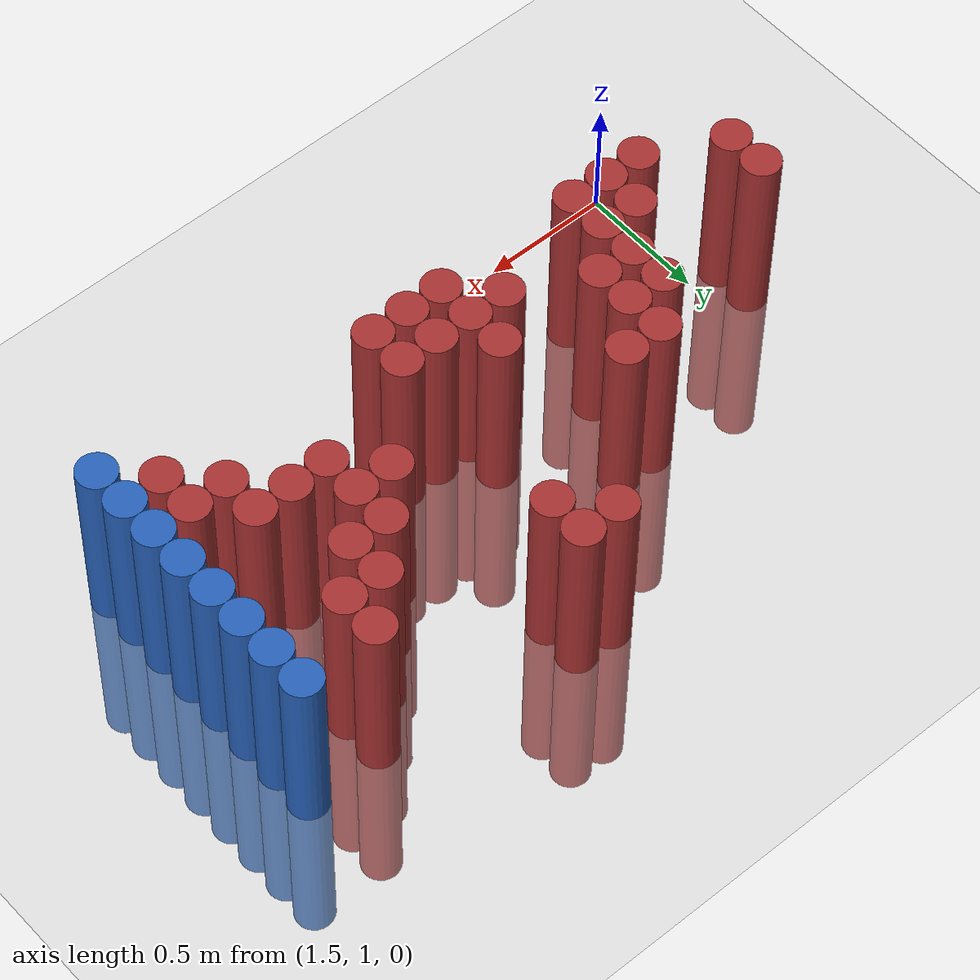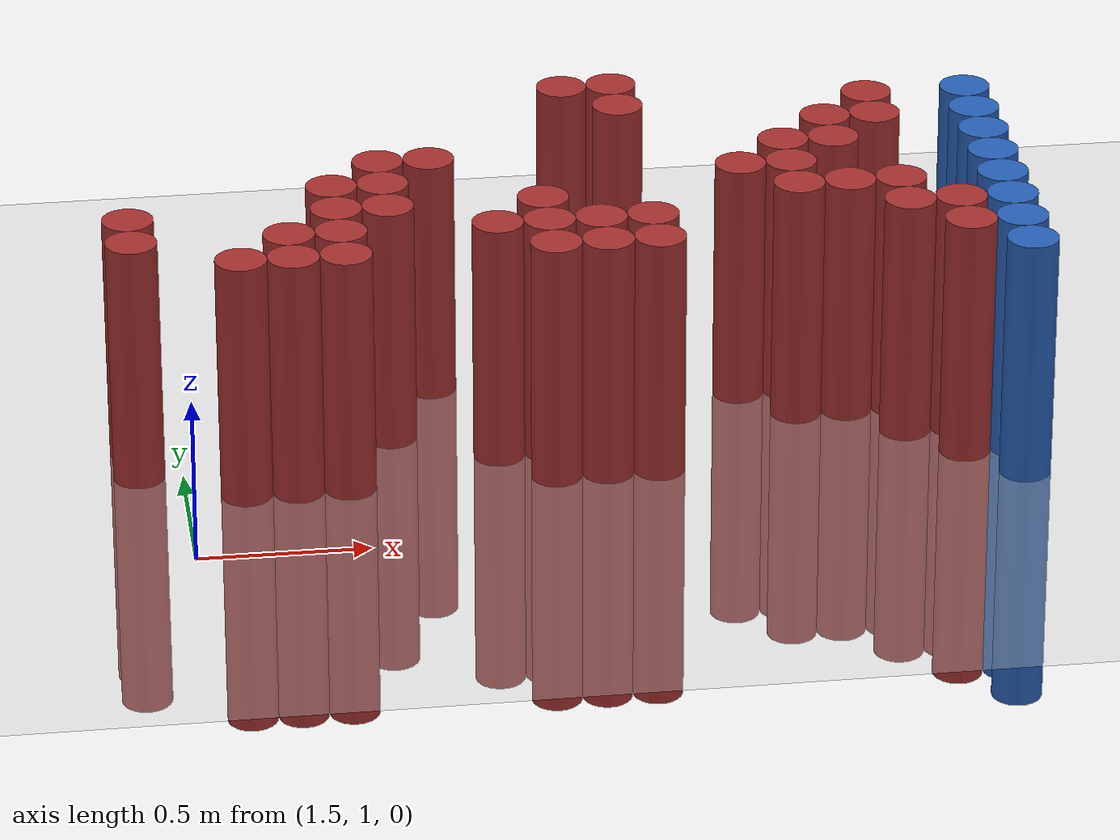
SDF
<sdf version="1.6">
 <world name="default">
  <model name="ground_plane">
   <static>1</static>
   <link name="link">
    <collision name="collision">
     <geometry><plane><normal>0 0 1</normal><size>100 100</size></plane></geometry>
     <surface><friction><ode><mu>100</mu><mu2>50</mu2></ode></friction></surface>
    </collision>
    <visual name="visual">
     <cast_shadows>0</cast_shadows>
     <geometry><plane><normal>0 0 1</normal><size>100 100</size></plane></geometry>
     <material>
      <script><uri>file://media/materials/scripts/gazebo.material</uri><name>Gazebo/Grey</name></script>
     </material>
    </visual>
   </link>
  </model>
  <model name="unit_cylinder_132">
   <static>1</static>
   <pose>3.925000 1.375000 0.000000 0.000000 0.000000 0.000000</pose>
   <link name="link">
    <inertial>
     <mass>1</mass>
     <inertia><ixx>0.145833</ixx><ixy>0</ixy><ixz>0</ixz><iyy>0.145833</iyy><iyz>0</iyz><izz>0.125</izz></inertia>
    </inertial>
    <collision name="collision">
     <geometry><cylinder><radius>0.075000</radius><length>1.5</length></cylinder></geometry>
    </collision>
    <visual name="visual">
     <geometry><cylinder><radius>0.075000</radius><length>1.5</length></cylinder></geometry>
     <material>
      <ambient>0.152000 0.379000 0.720000 1</ambient>
      <diffuse>0.152000 0.379000 0.720000 1</diffuse>
     </material>
     <material>
      <script><name>Gazebo/Grey</name><uri>file://media/materials/scripts/gazebo.material</uri></script>
     </material>
    </visual>
   </link>
  </model>
  <model name="unit_cylinder_134">
   <static>1</static>
   <pose>3.925000 1.525000 0.000000 0.000000 0.000000 0.000000</pose>
   <link name="link">
    <inertial>
     <mass>1</mass>
     <inertia><ixx>0.145833</ixx><ixy>0</ixy><ixz>0</ixz><iyy>0.145833</iyy><iyz>0</iyz><izz>0.125</izz></inertia>
    </inertial>
    <collision name="collision">
     <geometry><cylinder><radius>0.075000</radius><length>1.5</length></cylinder></geometry>
    </collision>
    <visual name="visual">
     <geometry><cylinder><radius>0.075000</radius><length>1.5</length></cylinder></geometry>
     <material>
      <ambient>0.152000 0.379000 0.720000 1</ambient>
      <diffuse>0.152000 0.379000 0.720000 1</diffuse>
     </material>
     <material>
      <script><name>Gazebo/Grey</name><uri>file://media/materials/scripts/gazebo.material</uri></script>
     </material>
    </visual>
   </link>
  </model>
  <model name="unit_cylinder_136">
   <static>1</static>
   <pose>3.925000 1.675000 0.000000 0.000000 0.000000 0.000000</pose>
   <link name="link">
    <inertial>
     <mass>1</mass>
     <inertia><ixx>0.145833</ixx><ixy>0</ixy><ixz>0</ixz><iyy>0.145833</iyy><iyz>0</iyz><izz>0.125</izz></inertia>
    </inertial>
    <collision name="collision">
     <geometry><cylinder><radius>0.075000</radius><length>1.5</length></cylinder></geometry>
    </collision>
    <visual name="visual">
     <geometry><cylinder><radius>0.075000</radius><length>1.5</length></cylinder></geometry>
     <material>
      <ambient>0.152000 0.379000 0.720000 1</ambient>
      <diffuse>0.152000 0.379000 0.720000 1</diffuse>
     </material>
     <material>
      <script><name>Gazebo/Grey</name><uri>file://media/materials/scripts/gazebo.material</uri></script>
     </material>
    </visual>
   </link>
  </model>
  <model name="unit_cylinder_138">
   <static>1</static>
   <pose>3.925000 1.825000 0.000000 0.000000 0.000000 0.000000</pose>
   <link name="link">
    <inertial>
     <mass>1</mass>
     <inertia><ixx>0.145833</ixx><ixy>0</ixy><ixz>0</ixz><iyy>0.145833</iyy><iyz>0</iyz><izz>0.125</izz></inertia>
    </inertial>
    <collision name="collision">
     <geometry><cylinder><radius>0.075000</radius><length>1.5</length></cylinder></geometry>
    </collision>
    <visual name="visual">
     <geometry><cylinder><radius>0.075000</radius><length>1.5</length></cylinder></geometry>
     <material>
      <ambient>0.152000 0.379000 0.720000 1</ambient>
      <diffuse>0.152000 0.379000 0.720000 1</diffuse>
     </material>
     <material>
      <script><name>Gazebo/Grey</name><uri>file://media/materials/scripts/gazebo.material</uri></script>
     </material>
    </visual>
   </link>
  </model>
  <model name="unit_cylinder_140">
   <static>1</static>
   <pose>3.925000 1.975000 0.000000 0.000000 0.000000 0.000000</pose>
   <link name="link">
    <inertial>
     <mass>1</mass>
     <inertia><ixx>0.145833</ixx><ixy>0</ixy><ixz>0</ixz><iyy>0.145833</iyy><iyz>0</iyz><izz>0.125</izz></inertia>
    </inertial>
    <collision name="collision">
     <geometry><cylinder><radius>0.075000</radius><length>1.5</length></cylinder></geometry>
    </collision>
    <visual name="visual">
     <geometry><cylinder><radius>0.075000</radius><length>1.5</length></cylinder></geometry>
     <material>
      <ambient>0.152000 0.379000 0.720000 1</ambient>
      <diffuse>0.152000 0.379000 0.720000 1</diffuse>
     </material>
     <material>
      <script><name>Gazebo/Grey</name><uri>file://media/materials/scripts/gazebo.material</uri></script>
     </material>
    </visual>
   </link>
  </model>
  <model name="unit_cylinder_142">
   <static>1</static>
   <pose>3.925000 2.125000 0.000000 0.000000 0.000000 0.000000</pose>
   <link name="link">
    <inertial>
     <mass>1</mass>
     <inertia><ixx>0.145833</ixx><ixy>0</ixy><ixz>0</ixz><iyy>0.145833</iyy><iyz>0</iyz><izz>0.125</izz></inertia>
    </inertial>
    <collision name="collision">
     <geometry><cylinder><radius>0.075000</radius><length>1.5</length></cylinder></geometry>
    </collision>
    <visual name="visual">
     <geometry><cylinder><radius>0.075000</radius><length>1.5</length></cylinder></geometry>
     <material>
      <ambient>0.152000 0.379000 0.720000 1</ambient>
      <diffuse>0.152000 0.379000 0.720000 1</diffuse>
     </material>
     <material>
      <script><name>Gazebo/Grey</name><uri>file://media/materials/scripts/gazebo.material</uri></script>
     </material>
    </visual>
   </link>
  </model>
  <model name="unit_cylinder_144">
   <static>1</static>
   <pose>3.925000 2.275000 0.000000 0.000000 0.000000 0.000000</pose>
   <link name="link">
    <inertial>
     <mass>1</mass>
     <inertia><ixx>0.145833</ixx><ixy>0</ixy><ixz>0</ixz><iyy>0.145833</iyy><iyz>0</iyz><izz>0.125</izz></inertia>
    </inertial>
    <collision name="collision">
     <geometry><cylinder><radius>0.075000</radius><length>1.5</length></cylinder></geometry>
    </collision>
    <visual name="visual">
     <geometry><cylinder><radius>0.075000</radius><length>1.5</length></cylinder></geometry>
     <material>
      <ambient>0.152000 0.379000 0.720000 1</ambient>
      <diffuse>0.152000 0.379000 0.720000 1</diffuse>
     </material>
     <material>
      <script><name>Gazebo/Grey</name><uri>file://media/materials/scripts/gazebo.material</uri></script>
     </material>
    </visual>
   </link>
  </model>
  <model name="unit_cylinder_419">
   <static>1</static>
   <pose>1.375000 1.525000 0.000000 0.000000 0.000000 0.000000</pose>
   <link name="link">
    <inertial>
     <mass>1</mass>
     <inertia><ixx>0.145833</ixx><ixy>0</ixy><ixz>0</ixz><iyy>0.145833</iyy><iyz>0</iyz><izz>0.125</izz></inertia>
    </inertial>
    <collision name="collision">
     <geometry><cylinder><radius>0.075000</radius><length>1.5</length></cylinder></geometry>
    </collision>
    <visual name="visual">
     <geometry><cylinder><radius>0.075000</radius><length>1.5</length></cylinder></geometry>
     <material>
      <ambient>0.648000 0.192000 0.192000 1</ambient>
      <diffuse>0.648000 0.192000 0.192000 1</diffuse>
     </material>
     <material>
      <script><name>Gazebo/Grey</name><uri>file://media/materials/scripts/gazebo.material</uri></script>
     </material>
    </visual>
   </link>
  </model>
  <model name="unit_cylinder_420">
   <static>1</static>
   <pose>1.375000 1.675000 0.000000 0.000000 0.000000 0.000000</pose>
   <link name="link">
    <inertial>
     <mass>1</mass>
     <inertia><ixx>0.145833</ixx><ixy>0</ixy><ixz>0</ixz><iyy>0.145833</iyy><iyz>0</iyz><izz>0.125</izz></inertia>
    </inertial>
    <collision name="collision">
     <geometry><cylinder><radius>0.075000</radius><length>1.5</length></cylinder></geometry>
    </collision>
    <visual name="visual">
     <geometry><cylinder><radius>0.075000</radius><length>1.5</length></cylinder></geometry>
     <material>
      <ambient>0.648000 0.192000 0.192000 1</ambient>
      <diffuse>0.648000 0.192000 0.192000 1</diffuse>
     </material>
     <material>
      <script><name>Gazebo/Grey</name><uri>file://media/materials/scripts/gazebo.material</uri></script>
     </material>
    </visual>
   </link>
  </model>
  <model name="unit_cylinder_432">
   <static>1</static>
   <pose>1.675000 1.375000 0.000000 0.000000 0.000000 0.000000</pose>
   <link name="link">
    <inertial>
     <mass>1</mass>
     <inertia><ixx>0.145833</ixx><ixy>0</ixy><ixz>0</ixz><iyy>0.145833</iyy><iyz>0</iyz><izz>0.125</izz></inertia>
    </inertial>
    <collision name="collision">
     <geometry><cylinder><radius>0.075000</radius><length>1.5</length></cylinder></geometry>
    </collision>
    <visual name="visual">
     <geometry><cylinder><radius>0.075000</radius><length>1.5</length></cylinder></geometry>
     <material>
      <ambient>0.648000 0.192000 0.192000 1</ambient>
      <diffuse>0.648000 0.192000 0.192000 1</diffuse>
     </material>
     <material>
      <script><name>Gazebo/Grey</name><uri>file://media/materials/scripts/gazebo.material</uri></script>
     </material>
    </visual>
   </link>
  </model>
  <model name="unit_cylinder_436">
   <static>1</static>
   <pose>1.825000 1.375000 0.000000 0.000000 0.000000 0.000000</pose>
   <link name="link">
    <inertial>
     <mass>1</mass>
     <inertia><ixx>0.145833</ixx><ixy>0</ixy><ixz>0</ixz><iyy>0.145833</iyy><iyz>0</iyz><izz>0.125</izz></inertia>
    </inertial>
    <collision name="collision">
     <geometry><cylinder><radius>0.075000</radius><length>1.5</length></cylinder></geometry>
    </collision>
    <visual name="visual">
     <geometry><cylinder><radius>0.075000</radius><length>1.5</length></cylinder></geometry>
     <material>
      <ambient>0.648000 0.192000 0.192000 1</ambient>
      <diffuse>0.648000 0.192000 0.192000 1</diffuse>
     </material>
     <material>
      <script><name>Gazebo/Grey</name><uri>file://media/materials/scripts/gazebo.material</uri></script>
     </material>
    </visual>
   </link>
  </model>
  <model name="unit_cylinder_437">
   <static>1</static>
   <pose>1.825000 1.525000 0.000000 0.000000 0.000000 0.000000</pose>
   <link name="link">
    <inertial>
     <mass>1</mass>
     <inertia><ixx>0.145833</ixx><ixy>0</ixy><ixz>0</ixz><iyy>0.145833</iyy><iyz>0</iyz><izz>0.125</izz></inertia>
    </inertial>
    <collision name="collision">
     <geometry><cylinder><radius>0.075000</radius><length>1.5</length></cylinder></geometry>
    </collision>
    <visual name="visual">
     <geometry><cylinder><radius>0.075000</radius><length>1.5</length></cylinder></geometry>
     <material>
      <ambient>0.648000 0.192000 0.192000 1</ambient>
      <diffuse>0.648000 0.192000 0.192000 1</diffuse>
     </material>
     <material>
      <script><name>Gazebo/Grey</name><uri>file://media/materials/scripts/gazebo.material</uri></script>
     </material>
    </visual>
   </link>
  </model>
  <model name="unit_cylinder_444">
   <static>1</static>
   <pose>1.975000 1.375000 0.000000 0.000000 0.000000 0.000000</pose>
   <link name="link">
    <inertial>
     <mass>1</mass>
     <inertia><ixx>0.145833</ixx><ixy>0</ixy><ixz>0</ixz><iyy>0.145833</iyy><iyz>0</iyz><izz>0.125</izz></inertia>
    </inertial>
    <collision name="collision">
     <geometry><cylinder><radius>0.075000</radius><length>1.5</length></cylinder></geometry>
    </collision>
    <visual name="visual">
     <geometry><cylinder><radius>0.075000</radius><length>1.5</length></cylinder></geometry>
     <material>
      <ambient>0.648000 0.192000 0.192000 1</ambient>
      <diffuse>0.648000 0.192000 0.192000 1</diffuse>
     </material>
     <material>
      <script><name>Gazebo/Grey</name><uri>file://media/materials/scripts/gazebo.material</uri></script>
     </material>
    </visual>
   </link>
  </model>
  <model name="unit_cylinder_445">
   <static>1</static>
   <pose>1.975000 1.525000 0.000000 0.000000 0.000000 0.000000</pose>
   <link name="link">
    <inertial>
     <mass>1</mass>
     <inertia><ixx>0.145833</ixx><ixy>0</ixy><ixz>0</ixz><iyy>0.145833</iyy><iyz>0</iyz><izz>0.125</izz></inertia>
    </inertial>
    <collision name="collision">
     <geometry><cylinder><radius>0.075000</radius><length>1.5</length></cylinder></geometry>
    </collision>
    <visual name="visual">
     <geometry><cylinder><radius>0.075000</radius><length>1.5</length></cylinder></geometry>
     <material>
      <ambient>0.648000 0.192000 0.192000 1</ambient>
      <diffuse>0.648000 0.192000 0.192000 1</diffuse>
     </material>
     <material>
      <script><name>Gazebo/Grey</name><uri>file://media/materials/scripts/gazebo.material</uri></script>
     </material>
    </visual>
   </link>
  </model>
  <model name="unit_cylinder_446">
   <static>1</static>
   <pose>1.975000 1.675000 0.000000 0.000000 0.000000 0.000000</pose>
   <link name="link">
    <inertial>
     <mass>1</mass>
     <inertia><ixx>0.145833</ixx><ixy>0</ixy><ixz>0</ixz><iyy>0.145833</iyy><iyz>0</iyz><izz>0.125</izz></inertia>
    </inertial>
    <collision name="collision">
     <geometry><cylinder><radius>0.075000</radius><length>1.5</length></cylinder></geometry>
    </collision>
    <visual name="visual">
     <geometry><cylinder><radius>0.075000</radius><length>1.5</length></cylinder></geometry>
     <material>
      <ambient>0.648000 0.192000 0.192000 1</ambient>
      <diffuse>0.648000 0.192000 0.192000 1</diffuse>
     </material>
     <material>
      <script><name>Gazebo/Grey</name><uri>file://media/materials/scripts/gazebo.material</uri></script>
     </material>
    </visual>
   </link>
  </model>
  <model name="unit_cylinder_447">
   <static>1</static>
   <pose>1.975000 1.825000 0.000000 0.000000 0.000000 0.000000</pose>
   <link name="link">
    <inertial>
     <mass>1</mass>
     <inertia><ixx>0.145833</ixx><ixy>0</ixy><ixz>0</ixz><iyy>0.145833</iyy><iyz>0</iyz><izz>0.125</izz></inertia>
    </inertial>
    <collision name="collision">
     <geometry><cylinder><radius>0.075000</radius><length>1.5</length></cylinder></geometry>
    </collision>
    <visual name="visual">
     <geometry><cylinder><radius>0.075000</radius><length>1.5</length></cylinder></geometry>
     <material>
      <ambient>0.648000 0.192000 0.192000 1</ambient>
      <diffuse>0.648000 0.192000 0.192000 1</diffuse>
     </material>
     <material>
      <script><name>Gazebo/Grey</name><uri>file://media/materials/scripts/gazebo.material</uri></script>
     </material>
    </visual>
   </link>
  </model>
  <model name="unit_cylinder_452">
   <static>1</static>
   <pose>2.125000 1.675000 0.000000 0.000000 0.000000 0.000000</pose>
   <link name="link">
    <inertial>
     <mass>1</mass>
     <inertia><ixx>0.145833</ixx><ixy>0</ixy><ixz>0</ixz><iyy>0.145833</iyy><iyz>0</iyz><izz>0.125</izz></inertia>
    </inertial>
    <collision name="collision">
     <geometry><cylinder><radius>0.075000</radius><length>1.5</length></cylinder></geometry>
    </collision>
    <visual name="visual">
     <geometry><cylinder><radius>0.075000</radius><length>1.5</length></cylinder></geometry>
     <material>
      <ambient>0.648000 0.192000 0.192000 1</ambient>
      <diffuse>0.648000 0.192000 0.192000 1</diffuse>
     </material>
     <material>
      <script><name>Gazebo/Grey</name><uri>file://media/materials/scripts/gazebo.material</uri></script>
     </material>
    </visual>
   </link>
  </model>
  <model name="unit_cylinder_453">
   <static>1</static>
   <pose>2.125000 1.825000 0.000000 0.000000 0.000000 0.000000</pose>
   <link name="link">
    <inertial>
     <mass>1</mass>
     <inertia><ixx>0.145833</ixx><ixy>0</ixy><ixz>0</ixz><iyy>0.145833</iyy><iyz>0</iyz><izz>0.125</izz></inertia>
    </inertial>
    <collision name="collision">
     <geometry><cylinder><radius>0.075000</radius><length>1.5</length></cylinder></geometry>
    </collision>
    <visual name="visual">
     <geometry><cylinder><radius>0.075000</radius><length>1.5</length></cylinder></geometry>
     <material>
      <ambient>0.648000 0.192000 0.192000 1</ambient>
      <diffuse>0.648000 0.192000 0.192000 1</diffuse>
     </material>
     <material>
      <script><name>Gazebo/Grey</name><uri>file://media/materials/scripts/gazebo.material</uri></script>
     </material>
    </visual>
   </link>
  </model>
  <model name="unit_cylinder_454">
   <static>1</static>
   <pose>2.125000 1.975000 0.000000 0.000000 0.000000 0.000000</pose>
   <link name="link">
    <inertial>
     <mass>1</mass>
     <inertia><ixx>0.145833</ixx><ixy>0</ixy><ixz>0</ixz><iyy>0.145833</iyy><iyz>0</iyz><izz>0.125</izz></inertia>
    </inertial>
    <collision name="collision">
     <geometry><cylinder><radius>0.075000</radius><length>1.5</length></cylinder></geometry>
    </collision>
    <visual name="visual">
     <geometry><cylinder><radius>0.075000</radius><length>1.5</length></cylinder></geometry>
     <material>
      <ambient>0.648000 0.192000 0.192000 1</ambient>
      <diffuse>0.648000 0.192000 0.192000 1</diffuse>
     </material>
     <material>
      <script><name>Gazebo/Grey</name><uri>file://media/materials/scripts/gazebo.material</uri></script>
     </material>
    </visual>
   </link>
  </model>
  <model name="unit_cylinder_456">
   <static>1</static>
   <pose>2.275000 1.975000 0.000000 0.000000 0.000000 0.000000</pose>
   <link name="link">
    <inertial>
     <mass>1</mass>
     <inertia><ixx>0.145833</ixx><ixy>0</ixy><ixz>0</ixz><iyy>0.145833</iyy><iyz>0</iyz><izz>0.125</izz></inertia>
    </inertial>
    <collision name="collision">
     <geometry><cylinder><radius>0.075000</radius><length>1.5</length></cylinder></geometry>
    </collision>
    <visual name="visual">
     <geometry><cylinder><radius>0.075000</radius><length>1.5</length></cylinder></geometry>
     <material>
      <ambient>0.648000 0.192000 0.192000 1</ambient>
      <diffuse>0.648000 0.192000 0.192000 1</diffuse>
     </material>
     <material>
      <script><name>Gazebo/Grey</name><uri>file://media/materials/scripts/gazebo.material</uri></script>
     </material>
    </visual>
   </link>
  </model>
  <model name="unit_cylinder_459">
   <static>1</static>
   <pose>2.425000 1.525000 0.000000 0.000000 0.000000 0.000000</pose>
   <link name="link">
    <inertial>
     <mass>1</mass>
     <inertia><ixx>0.145833</ixx><ixy>0</ixy><ixz>0</ixz><iyy>0.145833</iyy><iyz>0</iyz><izz>0.125</izz></inertia>
    </inertial>
    <collision name="collision">
     <geometry><cylinder><radius>0.075000</radius><length>1.5</length></cylinder></geometry>
    </collision>
    <visual name="visual">
     <geometry><cylinder><radius>0.075000</radius><length>1.5</length></cylinder></geometry>
     <material>
      <ambient>0.648000 0.192000 0.192000 1</ambient>
      <diffuse>0.648000 0.192000 0.192000 1</diffuse>
     </material>
     <material>
      <script><name>Gazebo/Grey</name><uri>file://media/materials/scripts/gazebo.material</uri></script>
     </material>
    </visual>
   </link>
  </model>
  <model name="unit_cylinder_465">
   <static>1</static>
   <pose>2.575000 1.375000 0.000000 0.000000 0.000000 0.000000</pose>
   <link name="link">
    <inertial>
     <mass>1</mass>
     <inertia><ixx>0.145833</ixx><ixy>0</ixy><ixz>0</ixz><iyy>0.145833</iyy><iyz>0</iyz><izz>0.125</izz></inertia>
    </inertial>
    <collision name="collision">
     <geometry><cylinder><radius>0.075000</radius><length>1.5</length></cylinder></geometry>
    </collision>
    <visual name="visual">
     <geometry><cylinder><radius>0.075000</radius><length>1.5</length></cylinder></geometry>
     <material>
      <ambient>0.648000 0.192000 0.192000 1</ambient>
      <diffuse>0.648000 0.192000 0.192000 1</diffuse>
     </material>
     <material>
      <script><name>Gazebo/Grey</name><uri>file://media/materials/scripts/gazebo.material</uri></script>
     </material>
    </visual>
   </link>
  </model>
  <model name="unit_cylinder_466">
   <static>1</static>
   <pose>2.575000 1.525000 0.000000 0.000000 0.000000 0.000000</pose>
   <link name="link">
    <inertial>
     <mass>1</mass>
     <inertia><ixx>0.145833</ixx><ixy>0</ixy><ixz>0</ixz><iyy>0.145833</iyy><iyz>0</iyz><izz>0.125</izz></inertia>
    </inertial>
    <collision name="collision">
     <geometry><cylinder><radius>0.075000</radius><length>1.5</length></cylinder></geometry>
    </collision>
    <visual name="visual">
     <geometry><cylinder><radius>0.075000</radius><length>1.5</length></cylinder></geometry>
     <material>
      <ambient>0.648000 0.192000 0.192000 1</ambient>
      <diffuse>0.648000 0.192000 0.192000 1</diffuse>
     </material>
     <material>
      <script><name>Gazebo/Grey</name><uri>file://media/materials/scripts/gazebo.material</uri></script>
     </material>
    </visual>
   </link>
  </model>
  <model name="unit_cylinder_467">
   <static>1</static>
   <pose>2.575000 1.675000 0.000000 0.000000 0.000000 0.000000</pose>
   <link name="link">
    <inertial>
     <mass>1</mass>
     <inertia><ixx>0.145833</ixx><ixy>0</ixy><ixz>0</ixz><iyy>0.145833</iyy><iyz>0</iyz><izz>0.125</izz></inertia>
    </inertial>
    <collision name="collision">
     <geometry><cylinder><radius>0.075000</radius><length>1.5</length></cylinder></geometry>
    </collision>
    <visual name="visual">
     <geometry><cylinder><radius>0.075000</radius><length>1.5</length></cylinder></geometry>
     <material>
      <ambient>0.648000 0.192000 0.192000 1</ambient>
      <diffuse>0.648000 0.192000 0.192000 1</diffuse>
     </material>
     <material>
      <script><name>Gazebo/Grey</name><uri>file://media/materials/scripts/gazebo.material</uri></script>
     </material>
    </visual>
   </link>
  </model>
  <model name="unit_cylinder_476">
   <static>1</static>
   <pose>2.725000 1.375000 0.000000 0.000000 0.000000 0.000000</pose>
   <link name="link">
    <inertial>
     <mass>1</mass>
     <inertia><ixx>0.145833</ixx><ixy>0</ixy><ixz>0</ixz><iyy>0.145833</iyy><iyz>0</iyz><izz>0.125</izz></inertia>
    </inertial>
    <collision name="collision">
     <geometry><cylinder><radius>0.075000</radius><length>1.5</length></cylinder></geometry>
    </collision>
    <visual name="visual">
     <geometry><cylinder><radius>0.075000</radius><length>1.5</length></cylinder></geometry>
     <material>
      <ambient>0.648000 0.192000 0.192000 1</ambient>
      <diffuse>0.648000 0.192000 0.192000 1</diffuse>
     </material>
     <material>
      <script><name>Gazebo/Grey</name><uri>file://media/materials/scripts/gazebo.material</uri></script>
     </material>
    </visual>
   </link>
  </model>
  <model name="unit_cylinder_477">
   <static>1</static>
   <pose>2.725000 1.525000 0.000000 0.000000 0.000000 0.000000</pose>
   <link name="link">
    <inertial>
     <mass>1</mass>
     <inertia><ixx>0.145833</ixx><ixy>0</ixy><ixz>0</ixz><iyy>0.145833</iyy><iyz>0</iyz><izz>0.125</izz></inertia>
    </inertial>
    <collision name="collision">
     <geometry><cylinder><radius>0.075000</radius><length>1.5</length></cylinder></geometry>
    </collision>
    <visual name="visual">
     <geometry><cylinder><radius>0.075000</radius><length>1.5</length></cylinder></geometry>
     <material>
      <ambient>0.648000 0.192000 0.192000 1</ambient>
      <diffuse>0.648000 0.192000 0.192000 1</diffuse>
     </material>
     <material>
      <script><name>Gazebo/Grey</name><uri>file://media/materials/scripts/gazebo.material</uri></script>
     </material>
    </visual>
   </link>
  </model>
  <model name="unit_cylinder_478">
   <static>1</static>
   <pose>2.725000 2.425000 0.000000 0.000000 0.000000 0.000000</pose>
   <link name="link">
    <inertial>
     <mass>1</mass>
     <inertia><ixx>0.145833</ixx><ixy>0</ixy><ixz>0</ixz><iyy>0.145833</iyy><iyz>0</iyz><izz>0.125</izz></inertia>
    </inertial>
    <collision name="collision">
     <geometry><cylinder><radius>0.075000</radius><length>1.5</length></cylinder></geometry>
    </collision>
    <visual name="visual">
     <geometry><cylinder><radius>0.075000</radius><length>1.5</length></cylinder></geometry>
     <material>
      <ambient>0.648000 0.192000 0.192000 1</ambient>
      <diffuse>0.648000 0.192000 0.192000 1</diffuse>
     </material>
     <material>
      <script><name>Gazebo/Grey</name><uri>file://media/materials/scripts/gazebo.material</uri></script>
     </material>
    </visual>
   </link>
  </model>
  <model name="unit_cylinder_484">
   <static>1</static>
   <pose>2.875000 1.375000 0.000000 0.000000 0.000000 0.000000</pose>
   <link name="link">
    <inertial>
     <mass>1</mass>
     <inertia><ixx>0.145833</ixx><ixy>0</ixy><ixz>0</ixz><iyy>0.145833</iyy><iyz>0</iyz><izz>0.125</izz></inertia>
    </inertial>
    <collision name="collision">
     <geometry><cylinder><radius>0.075000</radius><length>1.5</length></cylinder></geometry>
    </collision>
    <visual name="visual">
     <geometry><cylinder><radius>0.075000</radius><length>1.5</length></cylinder></geometry>
     <material>
      <ambient>0.648000 0.192000 0.192000 1</ambient>
      <diffuse>0.648000 0.192000 0.192000 1</diffuse>
     </material>
     <material>
      <script><name>Gazebo/Grey</name><uri>file://media/materials/scripts/gazebo.material</uri></script>
     </material>
    </visual>
   </link>
  </model>
  <model name="unit_cylinder_485">
   <static>1</static>
   <pose>2.875000 1.525000 0.000000 0.000000 0.000000 0.000000</pose>
   <link name="link">
    <inertial>
     <mass>1</mass>
     <inertia><ixx>0.145833</ixx><ixy>0</ixy><ixz>0</ixz><iyy>0.145833</iyy><iyz>0</iyz><izz>0.125</izz></inertia>
    </inertial>
    <collision name="collision">
     <geometry><cylinder><radius>0.075000</radius><length>1.5</length></cylinder></geometry>
    </collision>
    <visual name="visual">
     <geometry><cylinder><radius>0.075000</radius><length>1.5</length></cylinder></geometry>
     <material>
      <ambient>0.648000 0.192000 0.192000 1</ambient>
      <diffuse>0.648000 0.192000 0.192000 1</diffuse>
     </material>
     <material>
      <script><name>Gazebo/Grey</name><uri>file://media/materials/scripts/gazebo.material</uri></script>
     </material>
    </visual>
   </link>
  </model>
  <model name="unit_cylinder_486">
   <static>1</static>
   <pose>2.875000 2.275000 0.000000 0.000000 0.000000 0.000000</pose>
   <link name="link">
    <inertial>
     <mass>1</mass>
     <inertia><ixx>0.145833</ixx><ixy>0</ixy><ixz>0</ixz><iyy>0.145833</iyy><iyz>0</iyz><izz>0.125</izz></inertia>
    </inertial>
    <collision name="collision">
     <geometry><cylinder><radius>0.075000</radius><length>1.5</length></cylinder></geometry>
    </collision>
    <visual name="visual">
     <geometry><cylinder><radius>0.075000</radius><length>1.5</length></cylinder></geometry>
     <material>
      <ambient>0.648000 0.192000 0.192000 1</ambient>
      <diffuse>0.648000 0.192000 0.192000 1</diffuse>
     </material>
     <material>
      <script><name>Gazebo/Grey</name><uri>file://media/materials/scripts/gazebo.material</uri></script>
     </material>
    </visual>
   </link>
  </model>
  <model name="unit_cylinder_487">
   <static>1</static>
   <pose>2.875000 2.425000 0.000000 0.000000 0.000000 0.000000</pose>
   <link name="link">
    <inertial>
     <mass>1</mass>
     <inertia><ixx>0.145833</ixx><ixy>0</ixy><ixz>0</ixz><iyy>0.145833</iyy><iyz>0</iyz><izz>0.125</izz></inertia>
    </inertial>
    <collision name="collision">
     <geometry><cylinder><radius>0.075000</radius><length>1.5</length></cylinder></geometry>
    </collision>
    <visual name="visual">
     <geometry><cylinder><radius>0.075000</radius><length>1.5</length></cylinder></geometry>
     <material>
      <ambient>0.648000 0.192000 0.192000 1</ambient>
      <diffuse>0.648000 0.192000 0.192000 1</diffuse>
     </material>
     <material>
      <script><name>Gazebo/Grey</name><uri>file://media/materials/scripts/gazebo.material</uri></script>
     </material>
    </visual>
   </link>
  </model>
  <model name="unit_cylinder_513">
   <static>1</static>
   <pose>3.175000 1.825000 0.000000 0.000000 0.000000 0.000000</pose>
   <link name="link">
    <inertial>
     <mass>1</mass>
     <inertia><ixx>0.145833</ixx><ixy>0</ixy><ixz>0</ixz><iyy>0.145833</iyy><iyz>0</iyz><izz>0.125</izz></inertia>
    </inertial>
    <collision name="collision">
     <geometry><cylinder><radius>0.075000</radius><length>1.5</length></cylinder></geometry>
    </collision>
    <visual name="visual">
     <geometry><cylinder><radius>0.075000</radius><length>1.5</length></cylinder></geometry>
     <material>
      <ambient>0.648000 0.192000 0.192000 1</ambient>
      <diffuse>0.648000 0.192000 0.192000 1</diffuse>
     </material>
     <material>
      <script><name>Gazebo/Grey</name><uri>file://media/materials/scripts/gazebo.material</uri></script>
     </material>
    </visual>
   </link>
  </model>
  <model name="unit_cylinder_522">
   <static>1</static>
   <pose>3.325000 1.675000 0.000000 0.000000 0.000000 0.000000</pose>
   <link name="link">
    <inertial>
     <mass>1</mass>
     <inertia><ixx>0.145833</ixx><ixy>0</ixy><ixz>0</ixz><iyy>0.145833</iyy><iyz>0</iyz><izz>0.125</izz></inertia>
    </inertial>
    <collision name="collision">
     <geometry><cylinder><radius>0.075000</radius><length>1.5</length></cylinder></geometry>
    </collision>
    <visual name="visual">
     <geometry><cylinder><radius>0.075000</radius><length>1.5</length></cylinder></geometry>
     <material>
      <ambient>0.648000 0.192000 0.192000 1</ambient>
      <diffuse>0.648000 0.192000 0.192000 1</diffuse>
     </material>
     <material>
      <script><name>Gazebo/Grey</name><uri>file://media/materials/scripts/gazebo.material</uri></script>
     </material>
    </visual>
   </link>
  </model>
  <model name="unit_cylinder_523">
   <static>1</static>
   <pose>3.325000 1.825000 0.000000 0.000000 0.000000 0.000000</pose>
   <link name="link">
    <inertial>
     <mass>1</mass>
     <inertia><ixx>0.145833</ixx><ixy>0</ixy><ixz>0</ixz><iyy>0.145833</iyy><iyz>0</iyz><izz>0.125</izz></inertia>
    </inertial>
    <collision name="collision">
     <geometry><cylinder><radius>0.075000</radius><length>1.5</length></cylinder></geometry>
    </collision>
    <visual name="visual">
     <geometry><cylinder><radius>0.075000</radius><length>1.5</length></cylinder></geometry>
     <material>
      <ambient>0.648000 0.192000 0.192000 1</ambient>
      <diffuse>0.648000 0.192000 0.192000 1</diffuse>
     </material>
     <material>
      <script><name>Gazebo/Grey</name><uri>file://media/materials/scripts/gazebo.material</uri></script>
     </material>
    </visual>
   </link>
  </model>
  <model name="unit_cylinder_524">
   <static>1</static>
   <pose>3.325000 1.975000 0.000000 0.000000 0.000000 0.000000</pose>
   <link name="link">
    <inertial>
     <mass>1</mass>
     <inertia><ixx>0.145833</ixx><ixy>0</ixy><ixz>0</ixz><iyy>0.145833</iyy><iyz>0</iyz><izz>0.125</izz></inertia>
    </inertial>
    <collision name="collision">
     <geometry><cylinder><radius>0.075000</radius><length>1.5</length></cylinder></geometry>
    </collision>
    <visual name="visual">
     <geometry><cylinder><radius>0.075000</radius><length>1.5</length></cylinder></geometry>
     <material>
      <ambient>0.648000 0.192000 0.192000 1</ambient>
      <diffuse>0.648000 0.192000 0.192000 1</diffuse>
     </material>
     <material>
      <script><name>Gazebo/Grey</name><uri>file://media/materials/scripts/gazebo.material</uri></script>
     </material>
    </visual>
   </link>
  </model>
  <model name="unit_cylinder_530">
   <static>1</static>
   <pose>3.475000 1.675000 0.000000 0.000000 0.000000 0.000000</pose>
   <link name="link">
    <inertial>
     <mass>1</mass>
     <inertia><ixx>0.145833</ixx><ixy>0</ixy><ixz>0</ixz><iyy>0.145833</iyy><iyz>0</iyz><izz>0.125</izz></inertia>
    </inertial>
    <collision name="collision">
     <geometry><cylinder><radius>0.075000</radius><length>1.5</length></cylinder></geometry>
    </collision>
    <visual name="visual">
     <geometry><cylinder><radius>0.075000</radius><length>1.5</length></cylinder></geometry>
     <material>
      <ambient>0.648000 0.192000 0.192000 1</ambient>
      <diffuse>0.648000 0.192000 0.192000 1</diffuse>
     </material>
     <material>
      <script><name>Gazebo/Grey</name><uri>file://media/materials/scripts/gazebo.material</uri></script>
     </material>
    </visual>
   </link>
  </model>
  <model name="unit_cylinder_531">
   <static>1</static>
   <pose>3.475000 1.975000 0.000000 0.000000 0.000000 0.000000</pose>
   <link name="link">
    <inertial>
     <mass>1</mass>
     <inertia><ixx>0.145833</ixx><ixy>0</ixy><ixz>0</ixz><iyy>0.145833</iyy><iyz>0</iyz><izz>0.125</izz></inertia>
    </inertial>
    <collision name="collision">
     <geometry><cylinder><radius>0.075000</radius><length>1.5</length></cylinder></geometry>
    </collision>
    <visual name="visual">
     <geometry><cylinder><radius>0.075000</radius><length>1.5</length></cylinder></geometry>
     <material>
      <ambient>0.648000 0.192000 0.192000 1</ambient>
      <diffuse>0.648000 0.192000 0.192000 1</diffuse>
     </material>
     <material>
      <script><name>Gazebo/Grey</name><uri>file://media/materials/scripts/gazebo.material</uri></script>
     </material>
    </visual>
   </link>
  </model>
  <model name="unit_cylinder_532">
   <static>1</static>
   <pose>3.475000 2.125000 0.000000 0.000000 0.000000 0.000000</pose>
   <link name="link">
    <inertial>
     <mass>1</mass>
     <inertia><ixx>0.145833</ixx><ixy>0</ixy><ixz>0</ixz><iyy>0.145833</iyy><iyz>0</iyz><izz>0.125</izz></inertia>
    </inertial>
    <collision name="collision">
     <geometry><cylinder><radius>0.075000</radius><length>1.5</length></cylinder></geometry>
    </collision>
    <visual name="visual">
     <geometry><cylinder><radius>0.075000</radius><length>1.5</length></cylinder></geometry>
     <material>
      <ambient>0.648000 0.192000 0.192000 1</ambient>
      <diffuse>0.648000 0.192000 0.192000 1</diffuse>
     </material>
     <material>
      <script><name>Gazebo/Grey</name><uri>file://media/materials/scripts/gazebo.material</uri></script>
     </material>
    </visual>
   </link>
  </model>
  <model name="unit_cylinder_537">
   <static>1</static>
   <pose>3.625000 1.525000 0.000000 0.000000 0.000000 0.000000</pose>
   <link name="link">
    <inertial>
     <mass>1</mass>
     <inertia><ixx>0.145833</ixx><ixy>0</ixy><ixz>0</ixz><iyy>0.145833</iyy><iyz>0</iyz><izz>0.125</izz></inertia>
    </inertial>
    <collision name="collision">
     <geometry><cylinder><radius>0.075000</radius><length>1.5</length></cylinder></geometry>
    </collision>
    <visual name="visual">
     <geometry><cylinder><radius>0.075000</radius><length>1.5</length></cylinder></geometry>
     <material>
      <ambient>0.648000 0.192000 0.192000 1</ambient>
      <diffuse>0.648000 0.192000 0.192000 1</diffuse>
     </material>
     <material>
      <script><name>Gazebo/Grey</name><uri>file://media/materials/scripts/gazebo.material</uri></script>
     </material>
    </visual>
   </link>
  </model>
  <model name="unit_cylinder_538">
   <static>1</static>
   <pose>3.625000 1.675000 0.000000 0.000000 0.000000 0.000000</pose>
   <link name="link">
    <inertial>
     <mass>1</mass>
     <inertia><ixx>0.145833</ixx><ixy>0</ixy><ixz>0</ixz><iyy>0.145833</iyy><iyz>0</iyz><izz>0.125</izz></inertia>
    </inertial>
    <collision name="collision">
     <geometry><cylinder><radius>0.075000</radius><length>1.5</length></cylinder></geometry>
    </collision>
    <visual name="visual">
     <geometry><cylinder><radius>0.075000</radius><length>1.5</length></cylinder></geometry>
     <material>
      <ambient>0.648000 0.192000 0.192000 1</ambient>
      <diffuse>0.648000 0.192000 0.192000 1</diffuse>
     </material>
     <material>
      <script><name>Gazebo/Grey</name><uri>file://media/materials/scripts/gazebo.material</uri></script>
     </material>
    </visual>
   </link>
  </model>
  <model name="unit_cylinder_539">
   <static>1</static>
   <pose>3.625000 2.125000 0.000000 0.000000 0.000000 0.000000</pose>
   <link name="link">
    <inertial>
     <mass>1</mass>
     <inertia><ixx>0.145833</ixx><ixy>0</ixy><ixz>0</ixz><iyy>0.145833</iyy><iyz>0</iyz><izz>0.125</izz></inertia>
    </inertial>
    <collision name="collision">
     <geometry><cylinder><radius>0.075000</radius><length>1.5</length></cylinder></geometry>
    </collision>
    <visual name="visual">
     <geometry><cylinder><radius>0.075000</radius><length>1.5</length></cylinder></geometry>
     <material>
      <ambient>0.648000 0.192000 0.192000 1</ambient>
      <diffuse>0.648000 0.192000 0.192000 1</diffuse>
     </material>
     <material>
      <script><name>Gazebo/Grey</name><uri>file://media/materials/scripts/gazebo.material</uri></script>
     </material>
    </visual>
   </link>
  </model>
  <model name="unit_cylinder_540">
   <static>1</static>
   <pose>3.625000 2.275000 0.000000 0.000000 0.000000 0.000000</pose>
   <link name="link">
    <inertial>
     <mass>1</mass>
     <inertia><ixx>0.145833</ixx><ixy>0</ixy><ixz>0</ixz><iyy>0.145833</iyy><iyz>0</iyz><izz>0.125</izz></inertia>
    </inertial>
    <collision name="collision">
     <geometry><cylinder><radius>0.075000</radius><length>1.5</length></cylinder></geometry>
    </collision>
    <visual name="visual">
     <geometry><cylinder><radius>0.075000</radius><length>1.5</length></cylinder></geometry>
     <material>
      <ambient>0.648000 0.192000 0.192000 1</ambient>
      <diffuse>0.648000 0.192000 0.192000 1</diffuse>
     </material>
     <material>
      <script><name>Gazebo/Grey</name><uri>file://media/materials/scripts/gazebo.material</uri></script>
     </material>
    </visual>
   </link>
  </model>
  <model name="unit_cylinder_555">
   <static>1</static>
   <pose>3.775000 1.375000 0.000000 0.000000 0.000000 0.000000</pose>
   <link name="link">
    <inertial>
     <mass>1</mass>
     <inertia><ixx>0.145833</ixx><ixy>0</ixy><ixz>0</ixz><iyy>0.145833</iyy><iyz>0</iyz><izz>0.125</izz></inertia>
    </inertial>
    <collision name="collision">
     <geometry><cylinder><radius>0.075000</radius><length>1.5</length></cylinder></geometry>
    </collision>
    <visual name="visual">
     <geometry><cylinder><radius>0.075000</radius><length>1.5</length></cylinder></geometry>
     <material>
      <ambient>0.648000 0.192000 0.192000 1</ambient>
      <diffuse>0.648000 0.192000 0.192000 1</diffuse>
     </material>
     <material>
      <script><name>Gazebo/Grey</name><uri>file://media/materials/scripts/gazebo.material</uri></script>
     </material>
    </visual>
   </link>
  </model>
  <model name="unit_cylinder_556">
   <static>1</static>
   <pose>3.775000 1.525000 0.000000 0.000000 0.000000 0.000000</pose>
   <link name="link">
    <inertial>
     <mass>1</mass>
     <inertia><ixx>0.145833</ixx><ixy>0</ixy><ixz>0</ixz><iyy>0.145833</iyy><iyz>0</iyz><izz>0.125</izz></inertia>
    </inertial>
    <collision name="collision">
     <geometry><cylinder><radius>0.075000</radius><length>1.5</length></cylinder></geometry>
    </collision>
    <visual name="visual">
     <geometry><cylinder><radius>0.075000</radius><length>1.5</length></cylinder></geometry>
     <material>
      <ambient>0.648000 0.192000 0.192000 1</ambient>
      <diffuse>0.648000 0.192000 0.192000 1</diffuse>
     </material>
     <material>
      <script><name>Gazebo/Grey</name><uri>file://media/materials/scripts/gazebo.material</uri></script>
     </material>
    </visual>
   </link>
  </model>
  <model name="unit_cylinder_596">
   <static>1</static>
   <pose>3.925000 1.225000 0.000000 0.000000 0.000000 0.000000</pose>
   <link name="link">
    <inertial>
     <mass>1</mass>
     <inertia><ixx>0.145833</ixx><ixy>0</ixy><ixz>0</ixz><iyy>0.145833</iyy><iyz>0</iyz><izz>0.125</izz></inertia>
    </inertial>
    <collision name="collision">
     <geometry><cylinder><radius>0.075000</radius><length>1.5</length></cylinder></geometry>
    </collision>
    <visual name="visual">
     <geometry><cylinder><radius>0.075000</radius><length>1.5</length></cylinder></geometry>
     <material>
      <ambient>0.152000 0.379000 0.720000 1</ambient>
      <diffuse>0.152000 0.379000 0.720000 1</diffuse>
     </material>
     <material>
      <script><name>Gazebo/Grey</name><uri>file://media/materials/scripts/gazebo.material</uri></script>
     </material>
    </visual>
   </link>
  </model>
  <model name="unit_cylinder_597">
   <static>1</static>
   <pose>3.925000 1.375000 0.000000 0.000000 0.000000 0.000000</pose>
   <link name="link">
    <inertial>
     <mass>1</mass>
     <inertia><ixx>0.145833</ixx><ixy>0</ixy><ixz>0</ixz><iyy>0.145833</iyy><iyz>0</iyz><izz>0.125</izz></inertia>
    </inertial>
    <collision name="collision">
     <geometry><cylinder><radius>0.075000</radius><length>1.5</length></cylinder></geometry>
    </collision>
    <visual name="visual">
     <geometry><cylinder><radius>0.075000</radius><length>1.5</length></cylinder></geometry>
     <material>
      <ambient>0.152000 0.379000 0.720000 1</ambient>
      <diffuse>0.152000 0.379000 0.720000 1</diffuse>
     </material>
     <material>
      <script><name>Gazebo/Grey</name><uri>file://media/materials/scripts/gazebo.material</uri></script>
     </material>
    </visual>
   </link>
  </model>
  <model name="unit_cylinder_598">
   <static>1</static>
   <pose>3.925000 1.525000 0.000000 0.000000 0.000000 0.000000</pose>
   <link name="link">
    <inertial>
     <mass>1</mass>
     <inertia><ixx>0.145833</ixx><ixy>0</ixy><ixz>0</ixz><iyy>0.145833</iyy><iyz>0</iyz><izz>0.125</izz></inertia>
    </inertial>
    <collision name="collision">
     <geometry><cylinder><radius>0.075000</radius><length>1.5</length></cylinder></geometry>
    </collision>
    <visual name="visual">
     <geometry><cylinder><radius>0.075000</radius><length>1.5</length></cylinder></geometry>
     <material>
      <ambient>0.152000 0.379000 0.720000 1</ambient>
      <diffuse>0.152000 0.379000 0.720000 1</diffuse>
     </material>
     <material>
      <script><name>Gazebo/Grey</name><uri>file://media/materials/scripts/gazebo.material</uri></script>
     </material>
    </visual>
   </link>
  </model>
  <model name="unit_cylinder_599">
   <static>1</static>
   <pose>3.925000 1.675000 0.000000 0.000000 0.000000 0.000000</pose>
   <link name="link">
    <inertial>
     <mass>1</mass>
     <inertia><ixx>0.145833</ixx><ixy>0</ixy><ixz>0</ixz><iyy>0.145833</iyy><iyz>0</iyz><izz>0.125</izz></inertia>
    </inertial>
    <collision name="collision">
     <geometry><cylinder><radius>0.075000</radius><length>1.5</length></cylinder></geometry>
    </collision>
    <visual name="visual">
     <geometry><cylinder><radius>0.075000</radius><length>1.5</length></cylinder></geometry>
     <material>
      <ambient>0.152000 0.379000 0.720000 1</ambient>
      <diffuse>0.152000 0.379000 0.720000 1</diffuse>
     </material>
     <material>
      <script><name>Gazebo/Grey</name><uri>file://media/materials/scripts/gazebo.material</uri></script>
     </material>
    </visual>
   </link>
  </model>
  <model name="unit_cylinder_600">
   <static>1</static>
   <pose>3.925000 1.825000 0.000000 0.000000 0.000000 0.000000</pose>
   <link name="link">
    <inertial>
     <mass>1</mass>
     <inertia><ixx>0.145833</ixx><ixy>0</ixy><ixz>0</ixz><iyy>0.145833</iyy><iyz>0</iyz><izz>0.125</izz></inertia>
    </inertial>
    <collision name="collision">
     <geometry><cylinder><radius>0.075000</radius><length>1.5</length></cylinder></geometry>
    </collision>
    <visual name="visual">
     <geometry><cylinder><radius>0.075000</radius><length>1.5</length></cylinder></geometry>
     <material>
      <ambient>0.152000 0.379000 0.720000 1</ambient>
      <diffuse>0.152000 0.379000 0.720000 1</diffuse>
     </material>
     <material>
      <script><name>Gazebo/Grey</name><uri>file://media/materials/scripts/gazebo.material</uri></script>
     </material>
    </visual>
   </link>
  </model>
  <model name="unit_cylinder_601">
   <static>1</static>
   <pose>3.925000 1.975000 0.000000 0.000000 0.000000 0.000000</pose>
   <link name="link">
    <inertial>
     <mass>1</mass>
     <inertia><ixx>0.145833</ixx><ixy>0</ixy><ixz>0</ixz><iyy>0.145833</iyy><iyz>0</iyz><izz>0.125</izz></inertia>
    </inertial>
    <collision name="collision">
     <geometry><cylinder><radius>0.075000</radius><length>1.5</length></cylinder></geometry>
    </collision>
    <visual name="visual">
     <geometry><cylinder><radius>0.075000</radius><length>1.5</length></cylinder></geometry>
     <material>
      <ambient>0.152000 0.379000 0.720000 1</ambient>
      <diffuse>0.152000 0.379000 0.720000 1</diffuse>
     </material>
     <material>
      <script><name>Gazebo/Grey</name><uri>file://media/materials/scripts/gazebo.material</uri></script>
     </material>
    </visual>
   </link>
  </model>
  <model name="unit_cylinder_602">
   <static>1</static>
   <pose>3.925000 2.125000 0.000000 0.000000 0.000000 0.000000</pose>
   <link name="link">
    <inertial>
     <mass>1</mass>
     <inertia><ixx>0.145833</ixx><ixy>0</ixy><ixz>0</ixz><iyy>0.145833</iyy><iyz>0</iyz><izz>0.125</izz></inertia>
    </inertial>
    <collision name="collision">
     <geometry><cylinder><radius>0.075000</radius><length>1.5</length></cylinder></geometry>
    </collision>
    <visual name="visual">
     <geometry><cylinder><radius>0.075000</radius><length>1.5</length></cylinder></geometry>
     <material>
      <ambient>0.152000 0.379000 0.720000 1</ambient>
      <diffuse>0.152000 0.379000 0.720000 1</diffuse>
     </material>
     <material>
      <script><name>Gazebo/Grey</name><uri>file://media/materials/scripts/gazebo.material</uri></script>
     </material>
    </visual>
   </link>
  </model>
  <model name="unit_cylinder_603">
   <static>1</static>
   <pose>3.925000 2.275000 0.000000 0.000000 0.000000 0.000000</pose>
   <link name="link">
    <inertial>
     <mass>1</mass>
     <inertia><ixx>0.145833</ixx><ixy>0</ixy><ixz>0</ixz><iyy>0.145833</iyy><iyz>0</iyz><izz>0.125</izz></inertia>
    </inertial>
    <collision name="collision">
     <geometry><cylinder><radius>0.075000</radius><length>1.5</length></cylinder></geometry>
    </collision>
    <visual name="visual">
     <geometry><cylinder><radius>0.075000</radius><length>1.5</length></cylinder></geometry>
     <material>
      <ambient>0.152000 0.379000 0.720000 1</ambient>
      <diffuse>0.152000 0.379000 0.720000 1</diffuse>
     </material>
     <material>
      <script><name>Gazebo/Grey</name><uri>file://media/materials/scripts/gazebo.material</uri></script>
     </material>
    </visual>
   </link>
  </model>
 </world>
</sdf>
